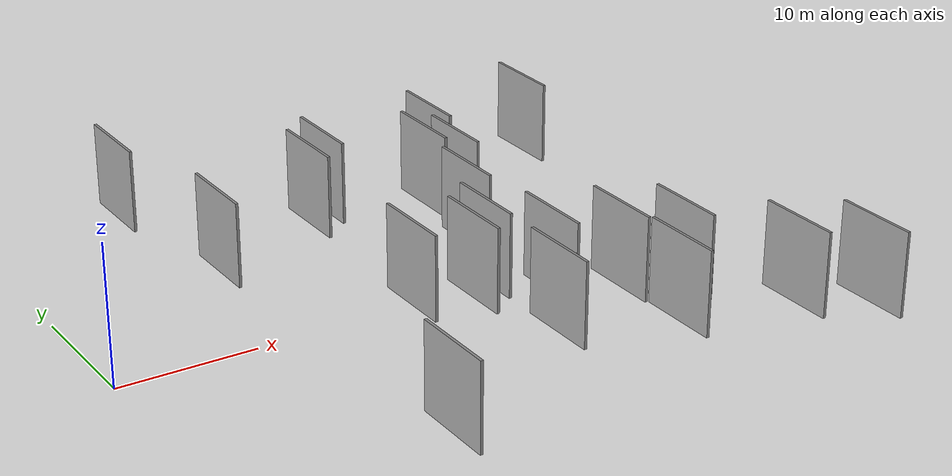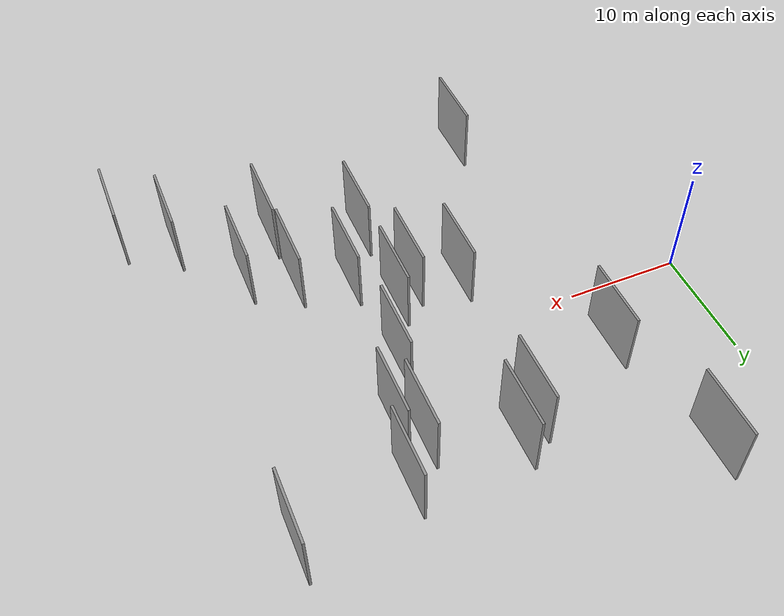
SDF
<sdf version="1.6">
 <world name="default">
  <scene>
   <sky><clouds><speed>12</speed></clouds></sky>
   <ambient>0.4 0.4 0.4 1</ambient>
   <background>0.7 0.7 0.7 1</background>
   <shadows>1</shadows>
  </scene>
  <gravity>0 0 -9.8066</gravity>
  <magnetic_field>6e-06 2.3e-05 -4.2e-05</magnetic_field>
  <physics default="0" name="default_physics" type="ode">
   <ode>
    <solver>
     <type>quick</type>
     <iters>10</iters>
     <sor>1.0</sor>
     <use_dynamic_moi_rescaling>0</use_dynamic_moi_rescaling>
    </solver>
    <constraints>
     <cfm>0</cfm>
     <erp>0.2</erp>
     <contact_max_correcting_vel>100</contact_max_correcting_vel>
     <contact_surface_layer>0.001</contact_surface_layer>
    </constraints>
   </ode>
   <max_step_size>0.004</max_step_size>
   <real_time_factor>1</real_time_factor>
   <real_time_update_rate>250</real_time_update_rate>
  </physics>
  <light name="sun" type="directional">
   <pose>0 0 10 0 0 0</pose>
   <diffuse>0.8 0.8 0.8 1</diffuse>
   <specular>0.2 0.2 0.2 1</specular>
   <attenuation>
    <range>1000</range>
    <constant>0.9</constant>
    <linear>0.01</linear>
    <quadratic>0.001</quadratic>
   </attenuation>
   <direction>-0.5 0.1 -0.9</direction>
  </light>
  <model name="grey_wall_1">
   <static>1</static>
   <pose>32.0203 -8.9348 2.5 0.000000 0.000000 1.570796</pose>
   <link name="link">
    <pose>0 0 3.00 0 0 0</pose>
    <collision name="collision"><geometry><box><size>6.00 0.2 6.00</size></box></geometry></collision>
    <visual name="visual">
     <cast_shadows>0</cast_shadows>
     <geometry><box><size>6.00 0.2 6.00</size></box></geometry>
     <material>
      <script>
       <uri>model://grey_wall/materials/scripts</uri>
       <uri>model://grey_wall/materials/textures</uri>
       <name>vrc/grey_wall</name>
      </script>
     </material>
    </visual>
   </link>
  </model>
  <model name="grey_wall_2">
   <static>1</static>
   <pose>19.1158 -4.1282 2.5 0.000000 0.000000 1.570796</pose>
   <link name="link">
    <pose>0 0 3.00 0 0 0</pose>
    <collision name="collision"><geometry><box><size>6.00 0.2 6.00</size></box></geometry></collision>
    <visual name="visual">
     <cast_shadows>0</cast_shadows>
     <geometry><box><size>6.00 0.2 6.00</size></box></geometry>
     <material>
      <script>
       <uri>model://grey_wall/materials/scripts</uri>
       <uri>model://grey_wall/materials/textures</uri>
       <name>vrc/grey_wall</name>
      </script>
     </material>
    </visual>
   </link>
  </model>
  <model name="grey_wall_3">
   <static>1</static>
   <pose>8.6810 18.6490 2.5 0.000000 0.000000 1.570796</pose>
   <link name="link">
    <pose>0 0 3.00 0 0 0</pose>
    <collision name="collision"><geometry><box><size>6.00 0.2 6.00</size></box></geometry></collision>
    <visual name="visual">
     <cast_shadows>0</cast_shadows>
     <geometry><box><size>6.00 0.2 6.00</size></box></geometry>
     <material>
      <script>
       <uri>model://grey_wall/materials/scripts</uri>
       <uri>model://grey_wall/materials/textures</uri>
       <name>vrc/grey_wall</name>
      </script>
     </material>
    </visual>
   </link>
  </model>
  <model name="grey_wall_4">
   <static>1</static>
   <pose>44.3298 -19.4396 2.5 0.000000 0.000000 1.570796</pose>
   <link name="link">
    <pose>0 0 3.00 0 0 0</pose>
    <collision name="collision"><geometry><box><size>6.00 0.2 6.00</size></box></geometry></collision>
    <visual name="visual">
     <cast_shadows>0</cast_shadows>
     <geometry><box><size>6.00 0.2 6.00</size></box></geometry>
     <material>
      <script>
       <uri>model://grey_wall/materials/scripts</uri>
       <uri>model://grey_wall/materials/textures</uri>
       <name>vrc/grey_wall</name>
      </script>
     </material>
    </visual>
   </link>
  </model>
  <model name="grey_wall_5">
   <static>1</static>
   <pose>24.9027 -12.1965 2.5 0.000000 0.000000 1.570796</pose>
   <link name="link">
    <pose>0 0 3.00 0 0 0</pose>
    <collision name="collision"><geometry><box><size>6.00 0.2 6.00</size></box></geometry></collision>
    <visual name="visual">
     <cast_shadows>0</cast_shadows>
     <geometry><box><size>6.00 0.2 6.00</size></box></geometry>
     <material>
      <script>
       <uri>model://grey_wall/materials/scripts</uri>
       <uri>model://grey_wall/materials/textures</uri>
       <name>vrc/grey_wall</name>
      </script>
     </material>
    </visual>
   </link>
  </model>
  <model name="grey_wall_6">
   <static>1</static>
   <pose>39.6799 14.1153 2.5 0.000000 0.000000 1.570796</pose>
   <link name="link">
    <pose>0 0 3.00 0 0 0</pose>
    <collision name="collision"><geometry><box><size>6.00 0.2 6.00</size></box></geometry></collision>
    <visual name="visual">
     <cast_shadows>0</cast_shadows>
     <geometry><box><size>6.00 0.2 6.00</size></box></geometry>
     <material>
      <script>
       <uri>model://grey_wall/materials/scripts</uri>
       <uri>model://grey_wall/materials/textures</uri>
       <name>vrc/grey_wall</name>
      </script>
     </material>
    </visual>
   </link>
  </model>
  <model name="grey_wall_7">
   <static>1</static>
   <pose>27.6948 -7.3217 2.5 0.000000 0.000000 1.570796</pose>
   <link name="link">
    <pose>0 0 3.00 0 0 0</pose>
    <collision name="collision"><geometry><box><size>6.00 0.2 6.00</size></box></geometry></collision>
    <visual name="visual">
     <cast_shadows>0</cast_shadows>
     <geometry><box><size>6.00 0.2 6.00</size></box></geometry>
     <material>
      <script>
       <uri>model://grey_wall/materials/scripts</uri>
       <uri>model://grey_wall/materials/textures</uri>
       <name>vrc/grey_wall</name>
      </script>
     </material>
    </visual>
   </link>
  </model>
  <model name="grey_wall_8">
   <static>1</static>
   <pose>19.6304 10.5923 2.5 0.000000 0.000000 1.570796</pose>
   <link name="link">
    <pose>0 0 3.00 0 0 0</pose>
    <collision name="collision"><geometry><box><size>6.00 0.2 6.00</size></box></geometry></collision>
    <visual name="visual">
     <cast_shadows>0</cast_shadows>
     <geometry><box><size>6.00 0.2 6.00</size></box></geometry>
     <material>
      <script>
       <uri>model://grey_wall/materials/scripts</uri>
       <uri>model://grey_wall/materials/textures</uri>
       <name>vrc/grey_wall</name>
      </script>
     </material>
    </visual>
   </link>
  </model>
  <model name="grey_wall_9">
   <static>1</static>
   <pose>32.2587 -14.9879 2.5 0.000000 0.000000 1.570796</pose>
   <link name="link">
    <pose>0 0 3.00 0 0 0</pose>
    <collision name="collision"><geometry><box><size>6.00 0.2 6.00</size></box></geometry></collision>
    <visual name="visual">
     <cast_shadows>0</cast_shadows>
     <geometry><box><size>6.00 0.2 6.00</size></box></geometry>
     <material>
      <script>
       <uri>model://grey_wall/materials/scripts</uri>
       <uri>model://grey_wall/materials/textures</uri>
       <name>vrc/grey_wall</name>
      </script>
     </material>
    </visual>
   </link>
  </model>
  <model name="grey_wall_10">
   <static>1</static>
   <pose>29.6530 7.5066 2.5 0.000000 0.000000 1.570796</pose>
   <link name="link">
    <pose>0 0 3.00 0 0 0</pose>
    <collision name="collision"><geometry><box><size>6.00 0.2 6.00</size></box></geometry></collision>
    <visual name="visual">
     <cast_shadows>0</cast_shadows>
     <geometry><box><size>6.00 0.2 6.00</size></box></geometry>
     <material>
      <script>
       <uri>model://grey_wall/materials/scripts</uri>
       <uri>model://grey_wall/materials/textures</uri>
       <name>vrc/grey_wall</name>
      </script>
     </material>
    </visual>
   </link>
  </model>
  <model name="grey_wall_11">
   <static>1</static>
   <pose>35.6921 -10.9146 2.5 0.000000 0.000000 1.570796</pose>
   <link name="link">
    <pose>0 0 3.00 0 0 0</pose>
    <collision name="collision"><geometry><box><size>6.00 0.2 6.00</size></box></geometry></collision>
    <visual name="visual">
     <cast_shadows>0</cast_shadows>
     <geometry><box><size>6.00 0.2 6.00</size></box></geometry>
     <material>
      <script>
       <uri>model://grey_wall/materials/scripts</uri>
       <uri>model://grey_wall/materials/textures</uri>
       <name>vrc/grey_wall</name>
      </script>
     </material>
    </visual>
   </link>
  </model>
  <model name="grey_wall_12">
   <static>1</static>
   <pose>12.6446 -19.3994 2.5 0.000000 0.000000 1.570796</pose>
   <link name="link">
    <pose>0 0 3.00 0 0 0</pose>
    <collision name="collision"><geometry><box><size>6.00 0.2 6.00</size></box></geometry></collision>
    <visual name="visual">
     <cast_shadows>0</cast_shadows>
     <geometry><box><size>6.00 0.2 6.00</size></box></geometry>
     <material>
      <script>
       <uri>model://grey_wall/materials/scripts</uri>
       <uri>model://grey_wall/materials/textures</uri>
       <name>vrc/grey_wall</name>
      </script>
     </material>
    </visual>
   </link>
  </model>
  <model name="grey_wall_13">
   <static>1</static>
   <pose>28.1692 9.3109 2.5 0.000000 0.000000 1.570796</pose>
   <link name="link">
    <pose>0 0 3.00 0 0 0</pose>
    <collision name="collision"><geometry><box><size>6.00 0.2 6.00</size></box></geometry></collision>
    <visual name="visual">
     <cast_shadows>0</cast_shadows>
     <geometry><box><size>6.00 0.2 6.00</size></box></geometry>
     <material>
      <script>
       <uri>model://grey_wall/materials/scripts</uri>
       <uri>model://grey_wall/materials/textures</uri>
       <name>vrc/grey_wall</name>
      </script>
     </material>
    </visual>
   </link>
  </model>
  <model name="grey_wall_14">
   <static>1</static>
   <pose>40.1759 -16.8462 2.5 0.000000 0.000000 1.570796</pose>
   <link name="link">
    <pose>0 0 3.00 0 0 0</pose>
    <collision name="collision"><geometry><box><size>6.00 0.2 6.00</size></box></geometry></collision>
    <visual name="visual">
     <cast_shadows>0</cast_shadows>
     <geometry><box><size>6.00 0.2 6.00</size></box></geometry>
     <material>
      <script>
       <uri>model://grey_wall/materials/scripts</uri>
       <uri>model://grey_wall/materials/textures</uri>
       <name>vrc/grey_wall</name>
      </script>
     </material>
    </visual>
   </link>
  </model>
  <model name="grey_wall_15">
   <static>1</static>
   <pose>21.6020 12.1916 2.5 0.000000 0.000000 1.570796</pose>
   <link name="link">
    <pose>0 0 3.00 0 0 0</pose>
    <collision name="collision"><geometry><box><size>6.00 0.2 6.00</size></box></geometry></collision>
    <visual name="visual">
     <cast_shadows>0</cast_shadows>
     <geometry><box><size>6.00 0.2 6.00</size></box></geometry>
     <material>
      <script>
       <uri>model://grey_wall/materials/scripts</uri>
       <uri>model://grey_wall/materials/textures</uri>
       <name>vrc/grey_wall</name>
      </script>
     </material>
    </visual>
   </link>
  </model>
  <model name="grey_wall_16">
   <static>1</static>
   <pose>24.9113 -3.8003 2.5 0.000000 0.000000 1.570796</pose>
   <link name="link">
    <pose>0 0 3.00 0 0 0</pose>
    <collision name="collision"><geometry><box><size>6.00 0.2 6.00</size></box></geometry></collision>
    <visual name="visual">
     <cast_shadows>0</cast_shadows>
     <geometry><box><size>6.00 0.2 6.00</size></box></geometry>
     <material>
      <script>
       <uri>model://grey_wall/materials/scripts</uri>
       <uri>model://grey_wall/materials/textures</uri>
       <name>vrc/grey_wall</name>
      </script>
     </material>
    </visual>
   </link>
  </model>
  <model name="grey_wall_17">
   <static>1</static>
   <pose>23.0249 -5.2571 2.5 0.000000 0.000000 1.570796</pose>
   <link name="link">
    <pose>0 0 3.00 0 0 0</pose>
    <collision name="collision"><geometry><box><size>6.00 0.2 6.00</size></box></geometry></collision>
    <visual name="visual">
     <cast_shadows>0</cast_shadows>
     <geometry><box><size>6.00 0.2 6.00</size></box></geometry>
     <material>
      <script>
       <uri>model://grey_wall/materials/scripts</uri>
       <uri>model://grey_wall/materials/textures</uri>
       <name>vrc/grey_wall</name>
      </script>
     </material>
    </visual>
   </link>
  </model>
  <model name="grey_wall_18">
   <static>1</static>
   <pose>27.1675 2.0941 2.5 0.000000 0.000000 1.570796</pose>
   <link name="link">
    <pose>0 0 3.00 0 0 0</pose>
    <collision name="collision"><geometry><box><size>6.00 0.2 6.00</size></box></geometry></collision>
    <visual name="visual">
     <cast_shadows>0</cast_shadows>
     <geometry><box><size>6.00 0.2 6.00</size></box></geometry>
     <material>
      <script>
       <uri>model://grey_wall/materials/scripts</uri>
       <uri>model://grey_wall/materials/textures</uri>
       <name>vrc/grey_wall</name>
      </script>
     </material>
    </visual>
   </link>
  </model>
  <model name="grey_wall_19">
   <static>1</static>
   <pose>10.8528 6.9164 2.5 0.000000 0.000000 1.570796</pose>
   <link name="link">
    <pose>0 0 3.00 0 0 0</pose>
    <collision name="collision"><geometry><box><size>6.00 0.2 6.00</size></box></geometry></collision>
    <visual name="visual">
     <cast_shadows>0</cast_shadows>
     <geometry><box><size>6.00 0.2 6.00</size></box></geometry>
     <material>
      <script>
       <uri>model://grey_wall/materials/scripts</uri>
       <uri>model://grey_wall/materials/textures</uri>
       <name>vrc/grey_wall</name>
      </script>
     </material>
    </visual>
   </link>
  </model>
  <model name="grey_wall_20">
   <static>1</static>
   <pose>30.6229 12.6520 2.5 0.000000 0.000000 1.570796</pose>
   <link name="link">
    <pose>0 0 3.00 0 0 0</pose>
    <collision name="collision"><geometry><box><size>6.00 0.2 6.00</size></box></geometry></collision>
    <visual name="visual">
     <cast_shadows>0</cast_shadows>
     <geometry><box><size>6.00 0.2 6.00</size></box></geometry>
     <material>
      <script>
       <uri>model://grey_wall/materials/scripts</uri>
       <uri>model://grey_wall/materials/textures</uri>
       <name>vrc/grey_wall</name>
      </script>
     </material>
    </visual>
   </link>
  </model>
 </world>
</sdf>
